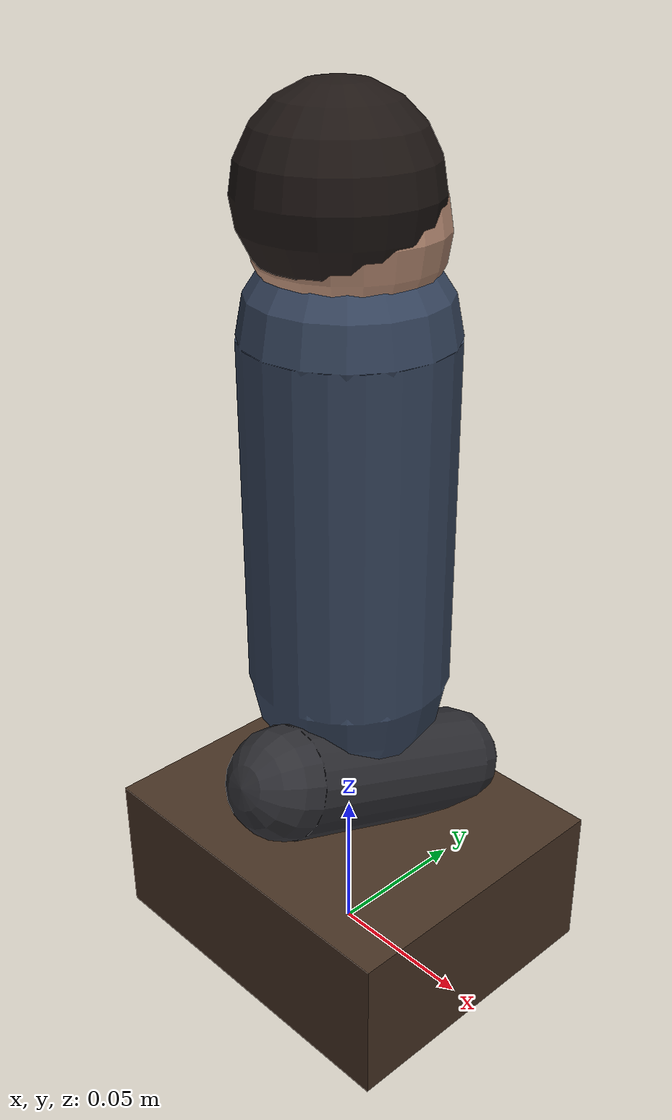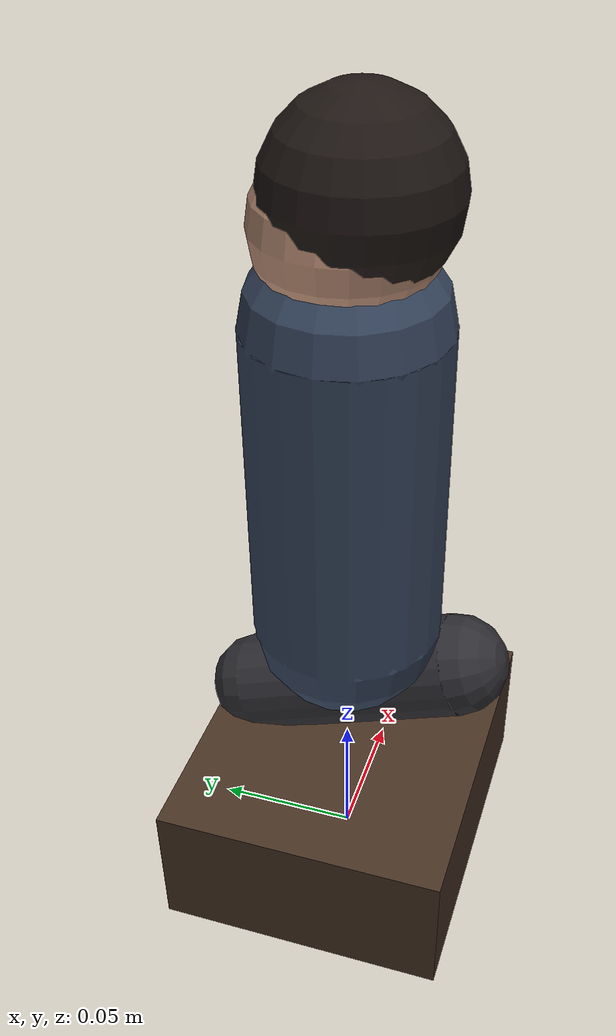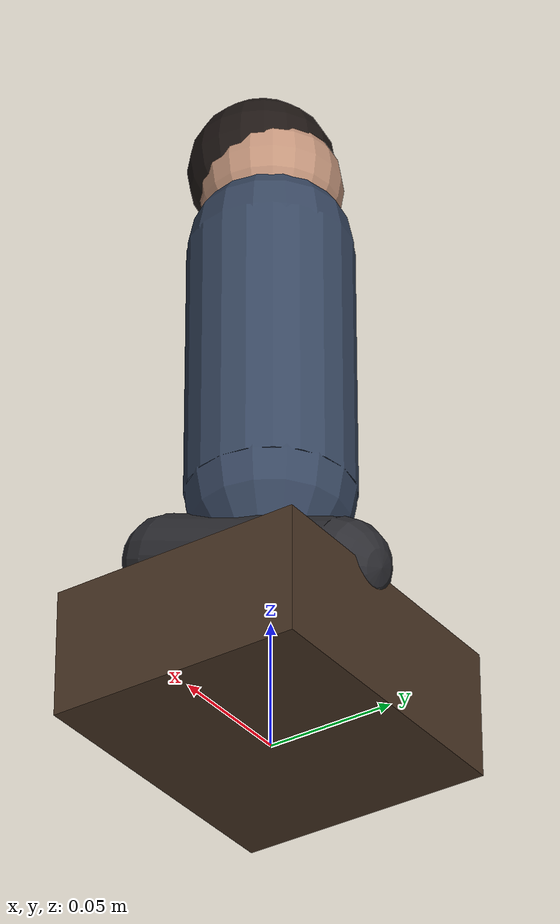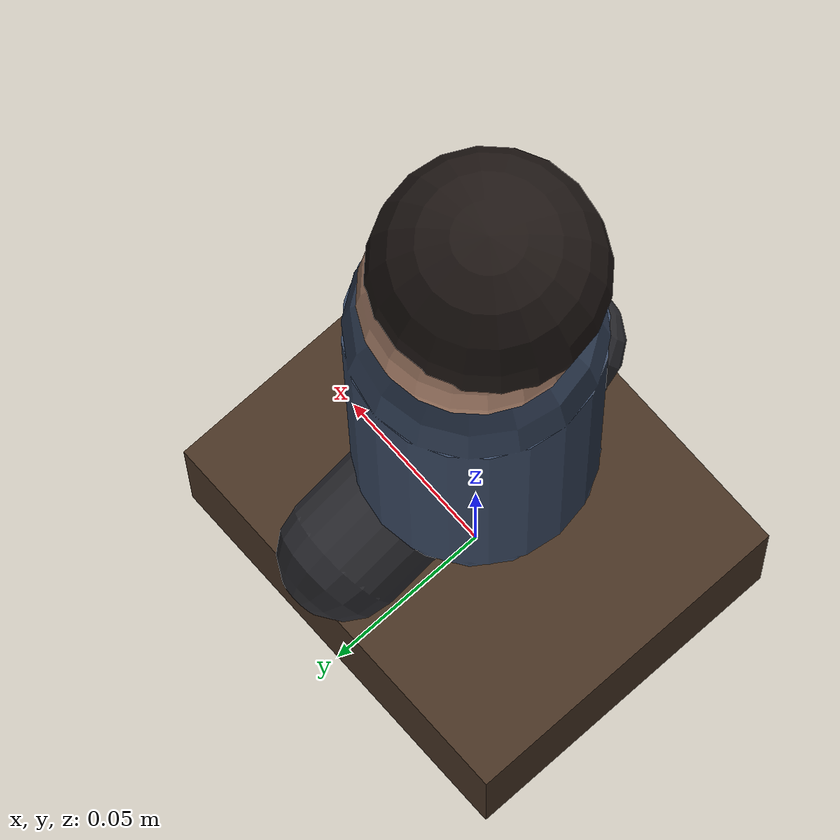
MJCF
<mujoco model="courier_reader">
    <compiler angle="radian" autolimits="true"/>
    <asset>
        <material name="courier_chair" rgba="0.28 0.20 0.14 1"/>
        <material name="courier_skin" rgba="0.76 0.58 0.48 1"/>
        <material name="courier_shirt" rgba="0.22 0.28 0.38 1"/>
        <material name="courier_pants" rgba="0.18 0.18 0.20 1"/>
        <material name="courier_hair" rgba="0.12 0.09 0.08 1"/>
    </asset>
    <worldbody>
        <!-- Visual target only. The reward target follows this mocap-wrapped
             fixed entity; collisions stay off so the duck cannot farm contact. -->
        <body name="reader" pos="0 0 0">
            <geom name="reader_chair" type="box" size="0.06 0.05 0.025"
                  pos="0 0 0.025" material="courier_chair"
                  contype="0" conaffinity="0"/>
            <geom name="reader_legs" type="capsule" size="0.018 0.04"
                  pos="0.01 0 0.07" euler="1.2 0 0" material="courier_pants"
                  contype="0" conaffinity="0"/>
            <geom name="reader_torso" type="capsule" size="0.032 0.055"
                  pos="0 0 0.16" material="courier_shirt"
                  contype="0" conaffinity="0"/>
            <geom name="reader_head" type="sphere" size="0.028"
                  pos="0 0 0.245" material="courier_skin"
                  contype="0" conaffinity="0"/>
            <geom name="reader_hair" type="sphere" size="0.029"
                  pos="0 -0.004 0.255" material="courier_hair"
                  contype="0" conaffinity="0"/>
        </body>
    </worldbody>
</mujoco>
